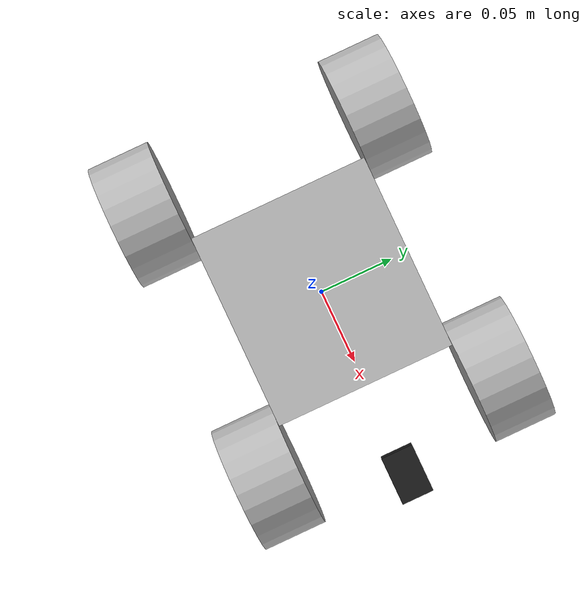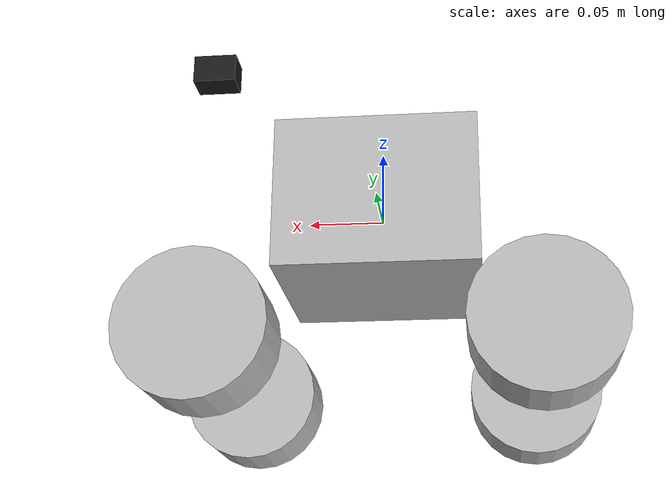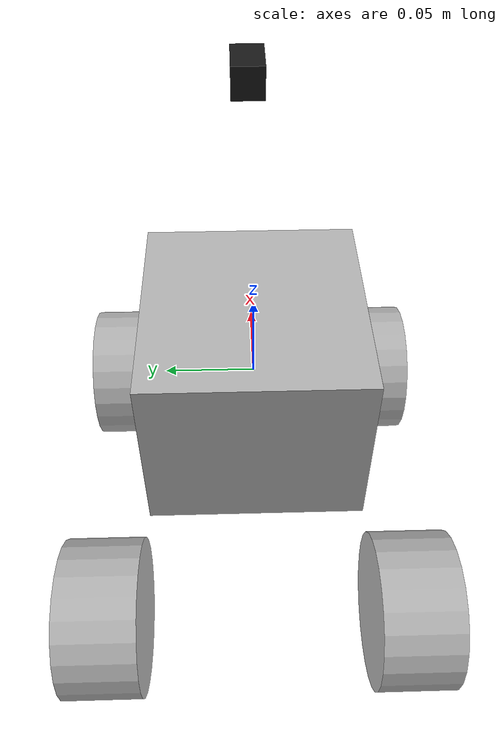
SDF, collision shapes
<?xml version="1.0"?>
<sdf version="1.7">
  <model name="limo_diff">
    <static>false</static>

    <link name="base_link">
      <inertial>
        <mass>2.2</mass>
        <inertia>
          <ixx>0.24</ixx>
          <iyy>0.96</iyy>
          <izz>0.96</izz>
          <ixy>0</ixy>
          <ixz>0</ixz>
          <iyz>0</iyz>
        </inertia>
      </inertial>
      <visual name="base_visual">
        <pose>0 0 -0.15 0 0 1.5708</pose>
        <geometry>
          <mesh>
            <uri>model://limo_diff/meshes/limo_base.dae</uri>
          </mesh>
        </geometry>
      </visual>
      <collision name="base_collision">
        <geometry>
          <box>
            <size>0.13 0.12 0.1</size>
          </box>
        </geometry>
      </collision>
    </link>

    <link name="front_left_wheel_link">
      <pose>0.1 0.065 -0.10 0 0 0</pose>
      <inertial>
        <mass>0.5</mass>
        <inertia>
          <ixx>0.01055</ixx>
          <iyy>0.00075</iyy>
          <izz>0.01055</izz>
          <ixy>0</ixy>
          <ixz>0</ixz>
          <iyz>0</iyz>
        </inertia>
      </inertial>
      <visual name="wheel_visual">
        <geometry>
          <mesh>
            <uri>model://limo_diff/meshes/limo_wheel.dae</uri>
          </mesh>
        </geometry>
      </visual>
      <collision name="wheel_collision">
        <pose>0 0.0225 0 1.5708 0 0</pose>
        <geometry>
          <cylinder>
            <radius>0.045</radius>
            <length>0.045</length>
          </cylinder>
        </geometry>
        <surface>
          <friction>
            <ode>
              <mu>1.2</mu>
              <mu2>1.2</mu2>
            </ode>
          </friction>
        </surface>
      </collision>
    </link>

    <link name="front_right_wheel_link">
      <pose>0.1 -0.065 -0.10 3.14159 0 0</pose>
      <inertial>
        <mass>0.5</mass>
        <inertia>
          <ixx>0.01055</ixx>
          <iyy>0.00075</iyy>
          <izz>0.01055</izz>
          <ixy>0</ixy>
          <ixz>0</ixz>
          <iyz>0</iyz>
        </inertia>
      </inertial>
      <visual name="wheel_visual">
        <geometry>
          <mesh>
            <uri>model://limo_diff/meshes/limo_wheel.dae</uri>
          </mesh>
        </geometry>
      </visual>
      <collision name="wheel_collision">
        <pose>0 0.0225 0 1.5708 0 0</pose>
        <geometry>
          <cylinder>
            <radius>0.045</radius>
            <length>0.045</length>
          </cylinder>
        </geometry>
        <surface>
          <friction>
            <ode>
              <mu>1.2</mu>
              <mu2>1.2</mu2>
            </ode>
          </friction>
        </surface>
      </collision>
    </link>

    <link name="rear_left_wheel_link">
      <pose>-0.1 0.065 -0.10 0 0 0</pose>
      <inertial>
        <mass>0.5</mass>
        <inertia>
          <ixx>0.01055</ixx>
          <iyy>0.00075</iyy>
          <izz>0.01055</izz>
          <ixy>0</ixy>
          <ixz>0</ixz>
          <iyz>0</iyz>
        </inertia>
      </inertial>
      <visual name="wheel_visual">
        <geometry>
          <mesh>
            <uri>model://limo_diff/meshes/limo_wheel.dae</uri>
          </mesh>
        </geometry>
      </visual>
      <collision name="wheel_collision">
        <pose>0 0.0225 0 1.5708 0 0</pose>
        <geometry>
          <cylinder>
            <radius>0.045</radius>
            <length>0.045</length>
          </cylinder>
        </geometry>
        <surface>
          <friction>
            <ode>
              <mu>1.2</mu>
              <mu2>1.2</mu2>
            </ode>
          </friction>
        </surface>
      </collision>
    </link>

    <link name="rear_right_wheel_link">
      <pose>-0.1 -0.065 -0.10 3.14159 0 0</pose>
      <inertial>
        <mass>0.5</mass>
        <inertia>
          <ixx>0.01055</ixx>
          <iyy>0.00075</iyy>
          <izz>0.01055</izz>
          <ixy>0</ixy>
          <ixz>0</ixz>
          <iyz>0</iyz>
        </inertia>
      </inertial>
      <visual name="wheel_visual">
        <geometry>
          <mesh>
            <uri>model://limo_diff/meshes/limo_wheel.dae</uri>
          </mesh>
        </geometry>
      </visual>
      <collision name="wheel_collision">
        <pose>0 0.0225 0 1.5708 0 0</pose>
        <geometry>
          <cylinder>
            <radius>0.045</radius>
            <length>0.045</length>
          </cylinder>
        </geometry>
        <surface>
          <friction>
            <ode>
              <mu>1.2</mu>
              <mu2>1.2</mu2>
            </ode>
          </friction>
        </surface>
      </collision>
    </link>

    <link name="depth_camera_link">
      <pose>0.12 0 0.12 0 0 0</pose>
      <inertial>
        <mass>0.1</mass>
        <inertia>
          <ixx>1e-6</ixx>
          <iyy>1e-6</iyy>
          <izz>1e-6</izz>
          <ixy>0</ixy>
          <ixz>0</ixz>
          <iyz>0</iyz>
        </inertia>
      </inertial>
      <visual name="camera_visual">
        <geometry>
          <box>
            <size>0.03 0.02 0.02</size>
          </box>
        </geometry>
        <material>
          <ambient>0.1 0.1 0.1 1</ambient>
          <diffuse>0.1 0.1 0.1 1</diffuse>
        </material>
      </visual>
      <collision name="camera_collision">
        <geometry>
          <box>
            <size>0.03 0.02 0.02</size>
          </box>
        </geometry>
      </collision>
      <sensor name="rgb_camera" type="camera">
        <topic>rgb_camera</topic>
        <update_rate>30</update_rate>
        <frame_id>depth_camera_link</frame_id>
        <camera>
          <horizontal_fov>1.047</horizontal_fov>
          <image>
            <width>1280</width>
            <height>720</height>
            <format>R8G8B8</format>
          </image>
          <clip>
            <near>0.1</near>
            <far>5.0</far>
          </clip>
        </camera>
        <always_on>true</always_on>
        <visualize>true</visualize>
      </sensor>
    </link>

    <joint name="front_left_wheel_joint" type="revolute">
      <parent>base_link</parent>
      <child>front_left_wheel_link</child>
      <axis>
        <xyz>0 1 0</xyz>
        <limit>
          <lower>-1e16</lower>
          <upper>1e16</upper>
          <effort>50</effort>
          <velocity>100</velocity>
        </limit>
        <dynamics>
          <damping>0.1</damping>
          <friction>0.0</friction>
        </dynamics>
      </axis>
    </joint>

    <joint name="front_right_wheel_joint" type="revolute">
      <parent>base_link</parent>
      <child>front_right_wheel_link</child>
      <axis>
        <xyz>0 -1 0</xyz>
        <limit>
          <lower>-1e16</lower>
          <upper>1e16</upper>
          <effort>50</effort>
          <velocity>100</velocity>
        </limit>
        <dynamics>
          <damping>0.1</damping>
          <friction>0.0</friction>
        </dynamics>
      </axis>
    </joint>

    <joint name="rear_left_wheel_joint" type="revolute">
      <parent>base_link</parent>
      <child>rear_left_wheel_link</child>
      <axis>
        <xyz>0 1 0</xyz>
        <limit>
          <lower>-1e16</lower>
          <upper>1e16</upper>
          <effort>50</effort>
          <velocity>100</velocity>
        </limit>
        <dynamics>
          <damping>0.1</damping>
          <friction>0.0</friction>
        </dynamics>
      </axis>
    </joint>

    <joint name="rear_right_wheel_joint" type="revolute">
      <parent>base_link</parent>
      <child>rear_right_wheel_link</child>
      <axis>
        <xyz>0 -1 0</xyz>
        <limit>
          <lower>-1e16</lower>
          <upper>1e16</upper>
          <effort>50</effort>
          <velocity>100</velocity>
        </limit>
        <dynamics>
          <damping>0.1</damping>
          <friction>0.0</friction>
        </dynamics>
      </axis>
    </joint>

    <joint name="depth_camera_joint" type="fixed">
      <parent>base_link</parent>
      <child>depth_camera_link</child>
    </joint>

    <plugin
      filename="ignition-gazebo-pose-publisher-system"
      name="gz::sim::systems::PosePublisher">
      <publish_link_pose>false</publish_link_pose>
      <use_pose_vector_msg>false</use_pose_vector_msg>
      <publish_nested_model_pose>true</publish_nested_model_pose>
      <update_frequency>50</update_frequency>
    </plugin>

    <plugin
      filename="ignition-gazebo-diff-drive-system"
      name="gz::sim::systems::DiffDrive">
      <topic>/model/limo_01/cmd_vel</topic>
      <odom_topic>/model/limo_01/odometry</odom_topic>
      <odom_publish_frequency>50</odom_publish_frequency>
      <frame_id>odom</frame_id>
      <child_frame_id>base_link</child_frame_id>
      <publish_tf>true</publish_tf>
      <left_joint>front_left_wheel_joint</left_joint>
      <left_joint>rear_left_wheel_joint</left_joint>
      <right_joint>front_right_wheel_joint</right_joint>
      <right_joint>rear_right_wheel_joint</right_joint>
      <wheel_separation>0.13</wheel_separation>
      <wheel_radius>0.045</wheel_radius>
      <min_velocity>-1</min_velocity>
      <max_velocity>1</max_velocity>
      <min_acceleration>-1</min_acceleration>
      <max_acceleration>1</max_acceleration>
      <max_torque>30</max_torque>
    </plugin>

    <plugin
      filename="ignition-gazebo-joint-state-publisher-system"
      name="gz::sim::systems::JointStatePublisher" />
  </model>
</sdf>
